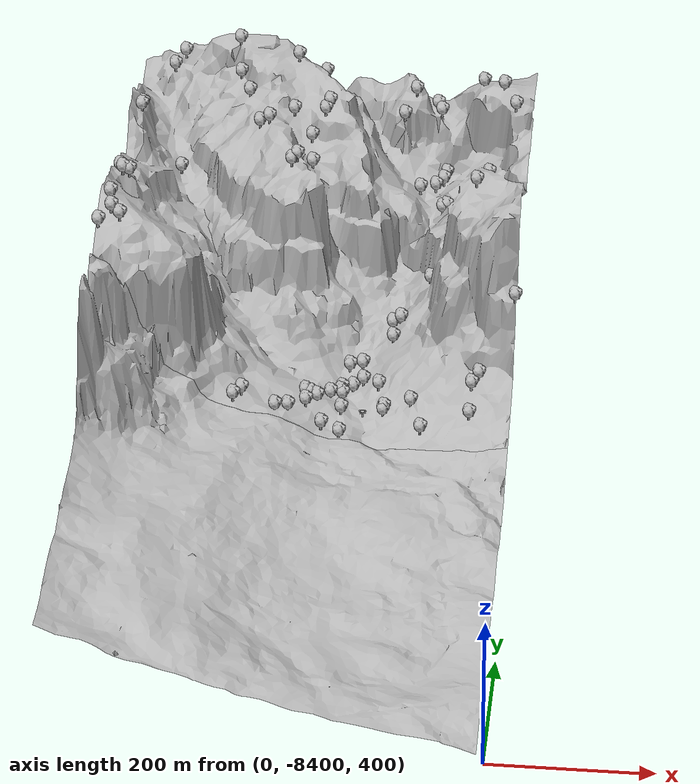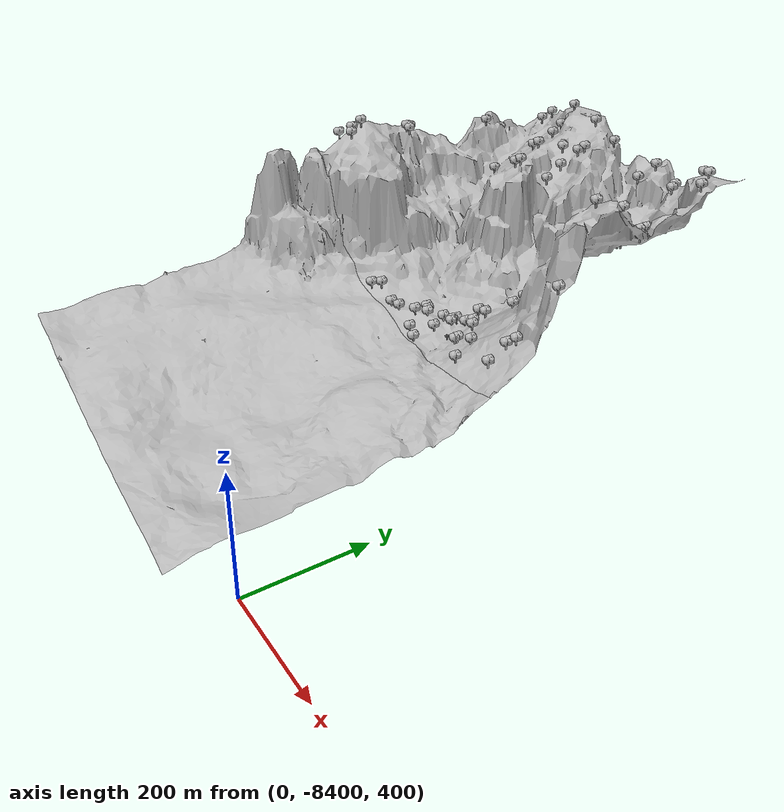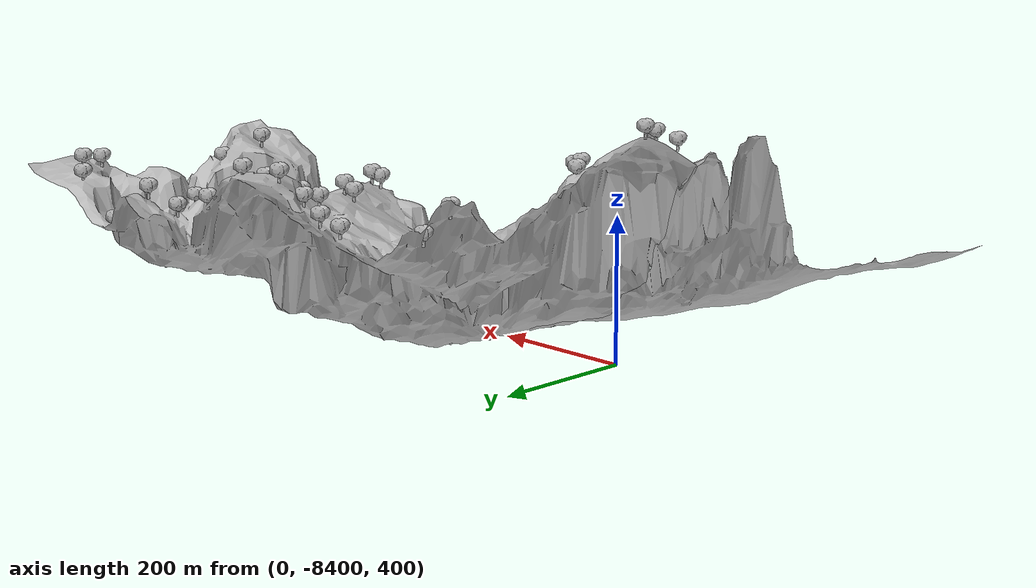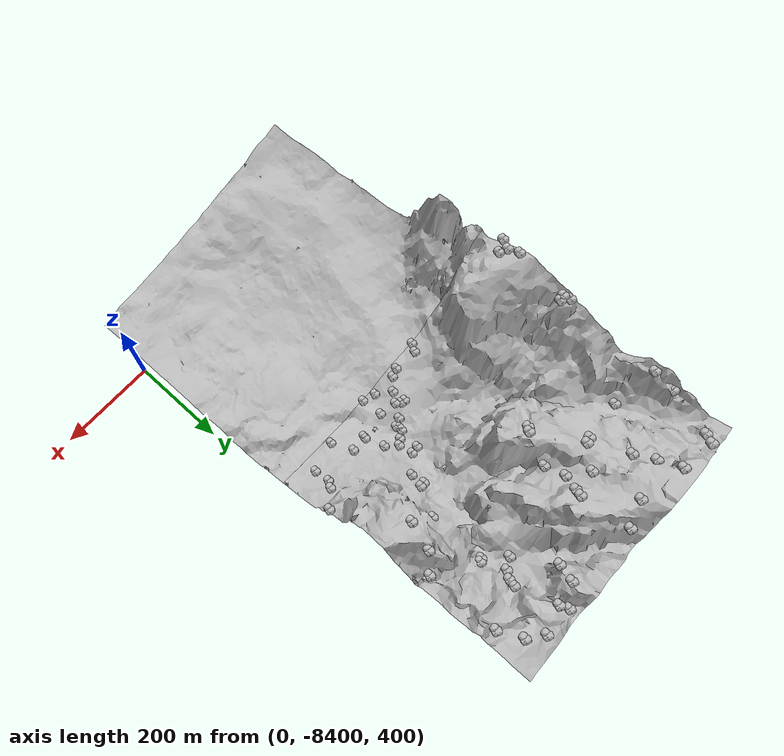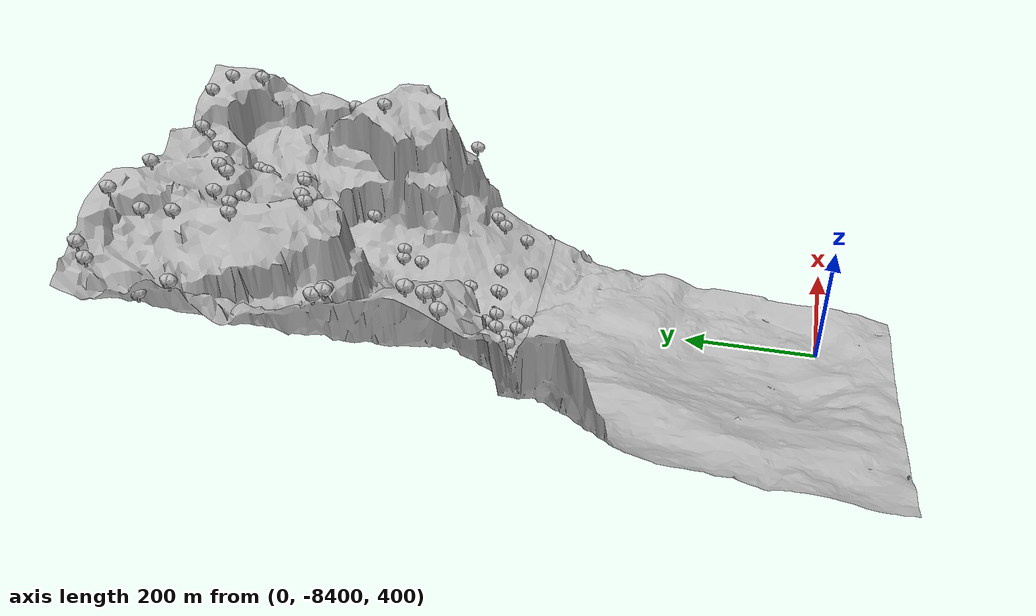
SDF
<?xml version="1.0"?>
<sdf version="1.8">
	<world name="earth">
		<plugin
			filename="ignition-gazebo-physics-system"
			name="gz::sim::systems::Physics">
		</plugin>
		<plugin
			filename="ignition-gazebo-user-commands-system"
			name="gz::sim::systems::UserCommands">
		</plugin>
		<plugin
			filename="ignition-gazebo-scene-broadcaster-system"
			name="gz::sim::systems::SceneBroadcaster">
		</plugin>
		<light name="sun" type="directional">
			<cast_shadows>0</cast_shadows>
			<pose>0 0 100 0 0 0</pose>
			<diffuse>0.8 0.8 0.8 1</diffuse>
			<specular>0.8 0.8 0.8 1</specular>
			<direction>-0.5 0.0 -0.9</direction>
			<intensity>1</intensity>
		</light>
		<gravity>0 0 -9.81</gravity>
		<magnetic_field>6e-06 2.3e-05 -4.2e-05</magnetic_field>
		<atmosphere type="adiabatic" />
		<physics name="default_physics" type="ignored">
			<max_step_size>0.01</max_step_size>
			<real_time_factor>1</real_time_factor>
			<real_time_update_rate>100</real_time_update_rate>
		</physics>
		<scene>
			<ambient>1.0 1.0 1.0 1</ambient>
			<background>0.6 0.8 1.0 1</background>
			<shadows>0</shadows>
			<grid>0</grid>
		</scene>
		<spherical_coordinates>
			<latitude_deg>0.0</latitude_deg>
			<longitude_deg>0.0</longitude_deg>
			<elevation>10.0</elevation>
			<heading_deg>0</heading_deg>
			<surface_model>EARTH_WGS84</surface_model>
		</spherical_coordinates>
		<include>
			<uri>
				model://models/tree_rs1
			</uri>
			<name>tree_1</name>
			<pose>-449.465 -7503.91 814.081420898438 0 0 0</pose>
		</include>

		<include>
			<uri>
				model://models/tree_rs1
			</uri>
			<name>tree_2</name>
			<pose>-68.6016 -7513.99 795.373291015625 0 0 0</pose>
		</include>

		<include>
			<uri>
				model://models/tree_rs1
			</uri>
			<name>tree_3</name>
			<pose>-127.05 -7508.54 756.898315429688 0 0 0</pose>
		</include>

		<include>
			<uri>
				model://models/tree_rs1
			</uri>
			<name>tree_4</name>
			<pose>-268.317 -7516.73 800.373291015625 0 0 0</pose>
		</include>

		<include>
			<uri>
				model://models/tree_rs1
			</uri>
			<name>tree_5</name>
			<pose>-461.661 -7517.57 801.60205078125 0 0 0</pose>
		</include>

		<include>
			<uri>
				model://models/tree_rs1
			</uri>
			<name>tree_6</name>
			<pose>-377.652 -7515.89 842.671875 0 0 0</pose>
		</include>

		<include>
			<uri>
				model://models/tree_rs1
			</uri>
			<name>tree_7</name>
			<pose>-121.238 -7522.46 755.244384765625 0 0 0</pose>
		</include>

		<include>
			<uri>
				model://models/tree_rs1
			</uri>
			<name>tree_8</name>
			<pose>-152.62 -7532.82 789.968322753906 0 0 0</pose>
		</include>

		<include>
			<uri>
				model://models/tree_rs1
			</uri>
			<name>tree_9</name>
			<pose>-41.6683 -7534.61 804.385498046875 0 0 0</pose>
		</include>

		<include>
			<uri>
				model://models/tree_rs1
			</uri>
			<name>tree_10</name>
			<pose>-301.609 -7533.84 832.765930175781 0 0 0</pose>
		</include>

		<include>
			<uri>
				model://models/tree_rs1
			</uri>
			<name>tree_11</name>
			<pose>-373.339 -7549.71 813.060913085938 0 0 0</pose>
		</include>

		<include>
			<uri>
				model://models/tree_rs1
			</uri>
			<name>tree_12</name>
			<pose>-165.351 -7559.39 768.339111328125 0 0 0</pose>
		</include>

		<include>
			<uri>
				model://models/tree_rs1
			</uri>
			<name>tree_13</name>
			<pose>-24.492 -7571.11 796.271789550781 0 0 0</pose>
		</include>

		<include>
			<uri>
				model://models/tree_rs1
			</uri>
			<name>tree_14</name>
			<pose>-359.055 -7581.86 805.1171875 0 0 0</pose>
		</include>

		<include>
			<uri>
				model://models/tree_rs1
			</uri>
			<name>tree_15</name>
			<pose>-109.721 -7586.26 701.037292480469 0 0 0</pose>
		</include>

		<include>
			<uri>
				model://models/tree_rs1
			</uri>
			<name>tree_16</name>
			<pose>-493.223 -7594.7 787.199890136719 0 0 0</pose>
		</include>

		<include>
			<uri>
				model://models/tree_rs1
			</uri>
			<name>tree_17</name>
			<pose>-255.852 -7600.64 806.314086914062 0 0 0</pose>
		</include>

		<include>
			<uri>
				model://models/tree_rs1
			</uri>
			<name>tree_18</name>
			<pose>-112.525 -7598.26 699.370483398438 0 0 0</pose>
		</include>

		<include>
			<uri>
				model://models/tree_rs1
			</uri>
			<name>tree_19</name>
			<pose>-299.871 -7609.92 797.498779296875 0 0 0</pose>
		</include>

		<include>
			<uri>
				model://models/tree_rs1
			</uri>
			<name>tree_20</name>
			<pose>-121.617 -7609.94 696.340454101562 0 0 0</pose>
		</include>

		<include>
			<uri>
				model://models/tree_rs1
			</uri>
			<name>tree_21</name>
			<pose>-260.266 -7611.42 800.318420410156 0 0 0</pose>
		</include>

		<include>
			<uri>
				model://models/tree_rs1
			</uri>
			<name>tree_22</name>
			<pose>-140.379 -7619.59 698.04052734375 0 0 0</pose>
		</include>

		<include>
			<uri>
				model://models/tree_rs1
			</uri>
			<name>tree_23</name>
			<pose>-275.35 -7635.02 774.935791015625 0 0 0</pose>
		</include>

		<include>
			<uri>
				model://models/tree_rs1
			</uri>
			<name>tree_24</name>
			<pose>-489.072 -7634.33 807.281860351562 0 0 0</pose>
		</include>

		<include>
			<uri>
				model://models/tree_rs1
			</uri>
			<name>tree_25</name>
			<pose>-339.535 -7644.63 797.423889160156 0 0 0</pose>
		</include>

		<include>
			<uri>
				model://models/tree_rs1
			</uri>
			<name>tree_26</name>
			<pose>-327.951 -7642.52 803.457153320312 0 0 0</pose>
		</include>

		<include>
			<uri>
				model://models/tree_rs1
			</uri>
			<name>tree_27</name>
			<pose>-105.163 -7648.14 690.167846679688 0 0 0</pose>
		</include>

		<include>
			<uri>
				model://models/tree_rs1
			</uri>
			<name>tree_28</name>
			<pose>-439.063 -7648.65 729.177978515625 0 0 0</pose>
		</include>

		<include>
			<uri>
				model://models/tree_rs1
			</uri>
			<name>tree_29</name>
			<pose>-110.198 -7650.26 688.420654296875 0 0 0</pose>
		</include>

		<include>
			<uri>
				model://models/tree_rs1
			</uri>
			<name>tree_30</name>
			<pose>-271.266 -7668.68 756.875305175781 0 0 0</pose>
		</include>

		<include>
			<uri>
				model://models/tree_rs1
			</uri>
			<name>tree_31</name>
			<pose>-28.4548 -7691.46 735.556640625 0 0 0</pose>
		</include>

		<include>
			<uri>
				model://models/tree_rs1
			</uri>
			<name>tree_32</name>
			<pose>-48.2995 -7714.96 779.665283203125 0 0 0</pose>
		</include>

		<include>
			<uri>
				model://models/tree_rs1
			</uri>
			<name>tree_33</name>
			<pose>-285.113 -7718.65 795.826110839844 0 0 0</pose>
		</include>

		<include>
			<uri>
				model://models/tree_rs1
			</uri>
			<name>tree_34</name>
			<pose>-291.594 -7724.84 791.669799804688 0 0 0</pose>
		</include>

		<include>
			<uri>
				model://models/tree_rs1
			</uri>
			<name>tree_35</name>
			<pose>-116.769 -7751.35 646.906005859375 0 0 0</pose>
		</include>

		<include>
			<uri>
				model://models/tree_rs1
			</uri>
			<name>tree_36</name>
			<pose>-60.2688 -7760.3 795.615600585938 0 0 0</pose>
		</include>

		<include>
			<uri>
				model://models/tree_rs1
			</uri>
			<name>tree_37</name>
			<pose>-148.803 -7802.51 618.792358398438 0 0 0</pose>
		</include>

		<include>
			<uri>
				model://models/tree_rs1
			</uri>
			<name>tree_38</name>
			<pose>-492.761 -7805.36 818.91845703125 0 0 0</pose>
		</include>

		<include>
			<uri>
				model://models/tree_rs1
			</uri>
			<name>tree_39</name>
			<pose>-158.576 -7803.27 611.449340820312 0 0 0</pose>
		</include>

		<include>
			<uri>
				model://models/tree_rs1
			</uri>
			<name>tree_40</name>
			<pose>-488.043 -7816.63 822.823974609375 0 0 0</pose>
		</include>

		<include>
			<uri>
				model://models/tree_rs1
			</uri>
			<name>tree_41</name>
			<pose>-480.01 -7815.57 819.439208984375 0 0 0</pose>
		</include>

		<include>
			<uri>
				model://models/tree_rs1
			</uri>
			<name>tree_42</name>
			<pose>-156.123 -7828.18 606.240661621094 0 0 0</pose>
		</include>

		<include>
			<uri>
				model://models/tree_rs1
			</uri>
			<name>tree_43</name>
			<pose>-206.629 -7857.8 580.758911132812 0 0 0</pose>
		</include>

		<include>
			<uri>
				model://models/tree_rs1
			</uri>
			<name>tree_44</name>
			<pose>-190.98 -7856.06 583.406127929688 0 0 0</pose>
		</include>

		<include>
			<uri>
				model://models/tree_rs1
			</uri>
			<name>tree_45</name>
			<pose>-3.93529 -7876.34 704.43310546875 0 0 0</pose>
		</include>

		<include>
			<uri>
				model://models/tree_rs1
			</uri>
			<name>tree_46</name>
			<pose>-187.849 -7882.98 577.023742675781 0 0 0</pose>
		</include>

		<include>
			<uri>
				model://models/tree_rs1
			</uri>
			<name>tree_47</name>
			<pose>-212.411 -7898.98 573.846923828125 0 0 0</pose>
		</include>

		<include>
			<uri>
				model://models/tree_rs1
			</uri>
			<name>tree_48</name>
			<pose>-213.576 -7906.59 573.925598144531 0 0 0</pose>
		</include>

		<include>
			<uri>
				model://models/tree_rs1
			</uri>
			<name>tree_49</name>
			<pose>-167.618 -7900.46 582.729675292969 0 0 0</pose>
		</include>

		<include>
			<uri>
				model://models/tree_rs1
			</uri>
			<name>tree_50</name>
			<pose>-199.513 -7890.69 571.094848632812 0 0 0</pose>
		</include>

		<include>
			<uri>
				model://models/tree_rs1
			</uri>
			<name>tree_51</name>
			<pose>-489.185 -7910.95 844.405029296875 0 0 0</pose>
		</include>

		<include>
			<uri>
				model://models/tree_rs1
			</uri>
			<name>tree_52</name>
			<pose>-210.988 -7910.62 572.861694335938 0 0 0</pose>
		</include>

		<include>
			<uri>
				model://models/tree_rs1
			</uri>
			<name>tree_53</name>
			<pose>-225.006 -7916.5 577.471374511719 0 0 0</pose>
		</include>

		<include>
			<uri>
				model://models/tree_rs1
			</uri>
			<name>tree_54</name>
			<pose>-44.2676 -7913.88 614.329223632812 0 0 0</pose>
		</include>

		<include>
			<uri>
				model://models/tree_rs1
			</uri>
			<name>tree_55</name>
			<pose>-254.372 -7929.47 587.097717285156 0 0 0</pose>
		</include>

		<include>
			<uri>
				model://models/tree_rs1
			</uri>
			<name>tree_56</name>
			<pose>-485.95 -7931.14 836.754455566406 0 0 0</pose>
		</include>

		<include>
			<uri>
				model://models/tree_rs1
			</uri>
			<name>tree_57</name>
			<pose>-248.546 -7930.96 585.455505371094 0 0 0</pose>
		</include>

		<include>
			<uri>
				model://models/tree_rs1
			</uri>
			<name>tree_58</name>
			<pose>-158.012 -7936.76 573.107666015625 0 0 0</pose>
		</include>

		<include>
			<uri>
				model://models/tree_rs1
			</uri>
			<name>tree_59</name>
			<pose>-52.1329 -7926.25 607.050537109375 0 0 0</pose>
		</include>

		<include>
			<uri>
				model://models/tree_rs1
			</uri>
			<name>tree_60</name>
			<pose>-125.504 -7935.29 583.874694824219 0 0 0</pose>
		</include>

		<include>
			<uri>
				model://models/tree_rs1
			</uri>
			<name>tree_61</name>
			<pose>-239.136 -7938.57 586.101135253906 0 0 0</pose>
		</include>

		<include>
			<uri>
				model://models/tree_rs1
			</uri>
			<name>tree_62</name>
			<pose>-474.909 -7938.95 830.990783691406 0 0 0</pose>
		</include>

		<include>
			<uri>
				model://models/tree_rs1
			</uri>
			<name>tree_63</name>
			<pose>-499.341 -7949.56 827.01123046875 0 0 0</pose>
		</include>

		<include>
			<uri>
				model://models/tree_rs1
			</uri>
			<name>tree_64</name>
			<pose>-158.925 -7941.3 571.751525878906 0 0 0</pose>
		</include>

		<include>
			<uri>
				model://models/tree_rs1
			</uri>
			<name>tree_65</name>
			<pose>-251.561 -7955.05 590.158325195312 0 0 0</pose>
		</include>

		<include>
			<uri>
				model://models/tree_rs1
			</uri>
			<name>tree_66</name>
			<pose>-209.478 -7946.6 575.204467773438 0 0 0</pose>
		</include>

		<include>
			<uri>
				model://models/tree_rs1
			</uri>
			<name>tree_67</name>
			<pose>-52.6893 -7958.41 585.157531738281 0 0 0</pose>
		</include>

		<include>
			<uri>
				model://models/tree_rs1
			</uri>
			<name>tree_68</name>
			<pose>-110.61 -7975.97 571.883544921875 0 0 0</pose>
		</include>

		<include>
			<uri>
				model://models/tree_rs1
			</uri>
			<name>tree_69</name>
			<pose>-271.513 -7973.71 593.5810546875 0 0 0</pose>
		</include>

		<include>
			<uri>
				model://models/tree_rs1
			</uri>
			<name>tree_70</name>
			<pose>-327.929 -7971.84 613.305297851562 0 0 0</pose>
		</include>

		<include>
			<uri>
				model://models/tree_rs1
			</uri>
			<name>tree_71</name>
			<pose>-286.832 -7978.62 595.876586914062 0 0 0</pose>
		</include>

		<include>
			<uri>
				model://models/tree_rs1
			</uri>
			<name>tree_72</name>
			<pose>-230.782 -7979.33 573.624572753906 0 0 0</pose>
		</include>

		<include>
			<uri>
				model://models/tree_rs1
			</uri>
			<name>tree_73</name>
			<pose>-336.68 -7986.13 613.181640625 0 0 0</pose>
		</include>

		<include>
			<uri>
				model://models/tree_rs1
			</uri>
			<name>tree_74</name>
			<pose>-208.273 -7987.74 567.6513671875 0 0 0</pose>
		</include>

		<include>
			<uri>
				model://models/large_scan_obj_small
			</uri>
			<pose>-252.5 -7742.5 1 0 0 0</pose>
		</include>

		<include>
			<uri>
				model://models/homebase
			</uri>
			<name> homebase</name>
			<pose>-183.5290 -7938.1300 567.1350 1.5700 0 -2</pose>
		</include>

	</world>
</sdf>

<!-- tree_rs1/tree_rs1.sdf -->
<sdf version="1.8">
  <model name="tree_rs1">
    <pose>0 0 0 0 0 0</pose>
    <static>true</static>
    <link name="body">
      <visual name="visual">
        <geometry>
          <mesh>
            <uri>tree.obj</uri>
          </mesh>
        </geometry>
      </visual>
      <collision name="collision">
        <geometry>
          <mesh>
            <uri>tree.obj</uri>
          </mesh>
        </geometry>
      </collision>
    </link>
  </model>
</sdf>

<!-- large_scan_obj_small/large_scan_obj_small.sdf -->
<sdf version="1.8">
	<model name="singletile">
		<pose>3500 -4500 0 0 0 0</pose>
		<static>true</static>
		<link name="link">
			<visual name="visual">
				<geometry>
					<mesh>
					<uri>meshes/singletile.obj</uri>
					</mesh>
				</geometry>
			</visual>
			<collision name="collision">
				<geometry>
					<mesh>
						<uri>meshes/singletile.obj</uri>
					</mesh>
				</geometry>
			</collision>
		</link>
		<link name="southtile">
			<pose>0 -500 0 0 0 0</pose>
			<visual name="visual">
				<geometry>
					<mesh>
					<uri>meshes/southtile.obj</uri>
					</mesh>
				</geometry>
			</visual>
			<collision name="collision">
				<geometry>
					<mesh>
						<uri>meshes/southtile.obj</uri>
					</mesh>
				</geometry>
			</collision>
		</link>
	</model>
</sdf>

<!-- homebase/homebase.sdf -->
<sdf version="1.8">
  <model name="homebase">
    <pose>0 0 0 0 0 0</pose>
    <static>true</static>
    <link name="body">
      <visual name="visual">
        <geometry>
          <mesh>
            <uri>visual.obj</uri>
          </mesh>
        </geometry>
      </visual>
      <collision name="collision">
        <geometry>
          <mesh>
            <uri>collision.obj</uri>
          </mesh>
        </geometry>
      </collision>

	</link>
  </model>
</sdf>
